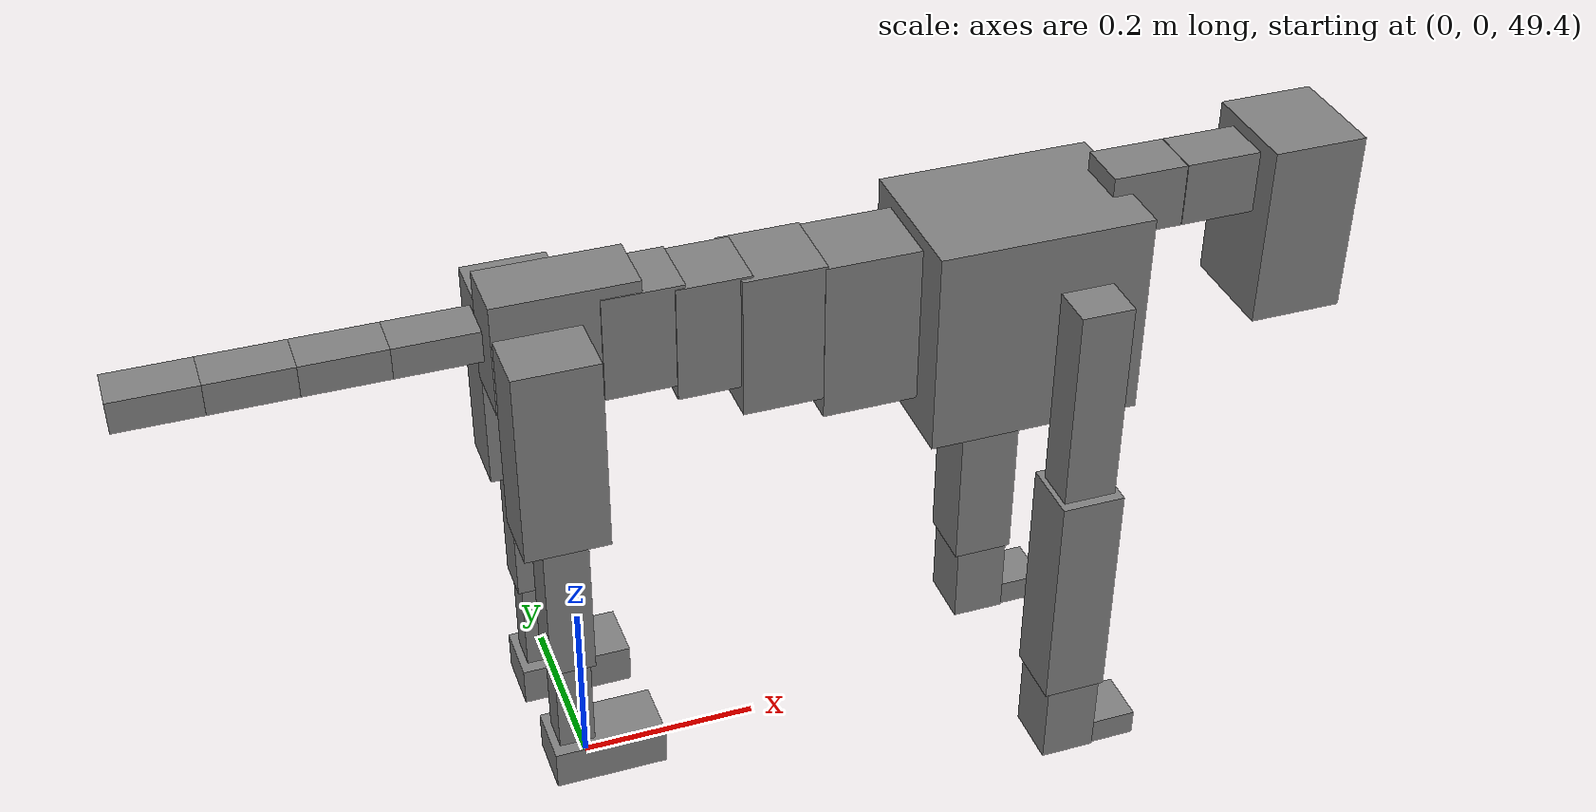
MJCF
<mujoco model="dog">

    <default>
        <joint armature="0.02" stiffness="1" damping="0.2" limited="true"/>
        <geom condim="3" friction="1 0.05 0.05" margin="0.01"/>
        <motor ctrllimited="true" ctrlrange="-1.0 1.0" forcelimited="true" gear="50"/>
    </default>

    <compiler inertiafromgeom="true" angle="radian"/>

    <option timestep="0.016" iterations="50" tolerance="1e-10" solver="Newton" jacobian="dense" cone="pyramidal"/>

    <size nconmax="20000" njmax="60000" nstack="5000000"/>
    <visual>
        <map force="0.1" zfar="30"/>
        <rgba haze="0.15 0.25 0.35 1"/>
        <quality shadowsize="2048"/>
        <global offwidth="800" offheight="800"/>
    </visual>

    <asset>
        <texture type="skybox" builtin="gradient" rgb1="0.3 0.5 0.7" rgb2="0 0 0" width="512" height="512"/>
        <texture name="texplane" type="2d" builtin="checker" rgb1=".2 .3 .4" rgb2=".1 0.15 0.2" width="512" height="512"
                 mark="cross" markrgb=".8 .8 .8"/>
        <texture name="texgeom" type="cube" builtin="flat" mark="cross" width="127" height="1278" rgb1="0.8 0.6 0.4"
                 rgb2="0.8 0.6 0.4" markrgb="1 1 1" random="0.01"/>

        <material name="matplane" reflectance="0.3" texture="texplane" texrepeat="1 1" texuniform="true"/>
        <material name="matgeom" texture="texgeom" texuniform="true" rgba="0.8 0.6 .4 1"/>
    </asset>

    <worldbody>
        <geom name="floor" pos="0 0 0" size="0 0 .25" type="plane" material="matplane" condim="3"/>

        <light directional="false" diffuse=".2 .2 .2" specular="0 0 0" pos="0 0 5" dir="0 0 -1" castshadow="false"/>
        <light mode="targetbodycom" target="torso" directional="false" diffuse=".8 .8 .8" specular="0.3 0.3 0.3"
               pos="0 0 4.0" dir="0 0 -1"/>

        <body name="root" pos="0 0 50">
            <freejoint name="root_1"/>
            <geom type="box" pos="0 0 -0.02" size="0.0774  0.0358  0.063" density="2030"/>

            <body name="spine1" pos="0.054 0 0">
                <joint name="spine1_y" axis="0 1 0" range="0 0.7" limited="true"/>
                <geom type="box" pos="0.02375 0 -0.03" size="0.04375  0.0375  0.05985" density="2030"/>

                <body name="spine2" pos="0.0612 0 0">
                    <joint name="spine2_y" axis="0 1 0" range="-0.15 0.15" limited="true"/>
                    <geom type="box" pos="0.03555  0  -0.04" size="0.04055  0.039  0.06615" density="2030"/>

                    <body name="spine3" pos="0.0730 0 0">
                        <joint name="spine3_y" axis="0 1 0" range="-0.15 0.15" limited="true"/>
                        <geom type="box" pos="0.03555  0  -0.057" size="0.04555  0.0445  0.081" density="2030"/>

                        <body name="spine4" pos="0.0780 0 0">
                            <joint name="spine4_y" axis="0 1 0" range="-0.15 0.15" limited="true"/>
                            <geom type="box" pos="0.05265  0  -0.07" size="0.05265  0.045  0.09135" density="2030"/>

                            <body name="torso" pos="0.1082 0 0">
                                <joint name="torso_y" axis="0 1 0" range="-0.15 0.15" limited="true"/>
                                <geom type="box" pos="0.11925  0  -0.085" size="0.11925  0.085  0.11745"
                                      density="2030"/>

                                <body name="neck1" pos="0.2160  0   0.0180">
                                    <joint name="neck1_y" axis="0 1 0" range="-1.2  -1" limited="true"/>
                                    <geom type="box" pos="0.0423  0  0" size="0.0423  0.03  0.036" density="2325"/>

                                    <body name="neck2" pos="0.0853  0  0">
                                        <joint name="neck2_y" axis="0 1 0" range="0.1  0" limited="true"/>
                                        <geom type="box" pos="0.0423  0  0" size="0.0423  0.03  0.036" density="2325"/>

                                        <body name="head" pos="0.0853  0  0">
                                            <joint name="head_y" axis="0 1 0" range="-0.3  -0.2" limited="true"/>
                                            <geom type="box" pos="0.0531  0  -0.055" size="0.0531  0.06  0.1044"
                                                  density="4030"/>

                                        </body>
                                    </body>
                                </body>

                                <body name="front_shoulder" pos="0.156  0   -0.0480">
                                    <joint name="front_shoulder_y" axis="0 1 0" range="-1 1.5" limited="true"/>
                                    <geom type="box" pos="0 0.13 -0.1047" size="0.0295  0.0252  0.1314" density="1158"/>
                                    <geom type="box" pos="0 -0.13 -0.1047" size="0.0295  0.0252  0.1314"
                                          density="1158"/>

                                    <body name="front_elbow" pos="0  0  -0.2094">
                                        <joint name="front_elbow_y" axis="0 1 0" range="-2 0" limited="true"/>
                                        <geom type="box" pos="0 0.13 -0.1338" size="0.0354  0.0362  0.1338"
                                              density="1081"/>
                                        <geom type="box" pos="0 -0.13 -0.1338" size="0.0354  0.0362  0.1338"
                                              density="1081"/>

                                        <body name="front_wrist" pos="0  0  -0.2676">
                                            <joint name="front_wrist_y" axis="0 1 0" range="-0.2 0" limited="true"/>
                                            <geom type="box" pos="0 0.13 -0.0415" size="0.0310  0.0344  0.0546"
                                                  density="1664"/>
                                            <geom type="box" pos="0 -0.13 -0.0415" size="0.0310  0.0344  0.0546"
                                                  density="1664"/>

                                            <body name="front_finger_end" pos="0  0  -0.0830">
                                                <joint name="front_finger_y" axis="0 1 0" range="-0.4 1"
                                                       limited="true"/>
                                                <geom type="box" pos="0.0299  0.13  -0.0002"
                                                      size="0.0548  0.0299  0.0152" density="1515"/>
                                                <geom type="box" pos="0.0299  -0.13  -0.0002"
                                                      size="0.0548  0.0299  0.0152" density="1515"/>

                                            </body>

                                        </body>
                                    </body>
                                </body>

                            </body>
                        </body>
                    </body>
                </body>
            </body>

            <body name="back_hip" pos="-0.03 0 -0.018">
                <joint name="back_hip_y" axis="0 1 0" range="-1.5 0.3" limited="true"/>
                <geom type="box" pos="0 0.07 -0.0890" size="0.0458  0.0359  0.1118" density="1154"/>
                <geom type="box" pos="0 -0.07 -0.0890" size="0.0458  0.0359  0.1118" density="1154"/>

                <body name="back_knee" pos="0  0  -0.1781">
                    <joint name="back_knee_y" axis="0 1 0" range="0 2.8" limited="true"/>
                    <geom type="box" pos="0 0.07 -0.0886" size="0.0244  0.0241  0.1042" density="1227"/>
                    <geom type="box" pos="0 -0.07 -0.0886" size="0.0244  0.0241  0.1042" density="1227"/>

                    <body name="back_ankle" pos="0  0  -0.1772">
                        <joint name="back_ankle_y" axis="0 1 0" range="-2.2 0" limited="true"/>
                        <geom type="box" pos="0 0.07 -0.0693" size="0.0197  0.0197  0.0806" density="1284"/>
                        <geom type="box" pos="0 -0.07 -0.0693" size="0.0197  0.0197  0.0806" density="1284"/>

                        <body name="back_toe_end" pos="0  0  -0.1386">
                            <joint name="back_toe_y" axis="0 1 0" range="-0.4 1" limited="true"/>
                            <geom type="box" pos="0.0339  0.07  -0.0075" size="0.0621  0.0339  0.0225" density="1515"/>
                            <geom type="box" pos="0.0339  -0.07  -0.0075" size="0.0621  0.0339  0.0225" density="1515"/>

                        </body>
                    </body>
                </body>
            </body>

            <body name="tail1" pos="-0.074 0 -0.006">
                <joint name="tail1_y" axis="0 1 0" range="-0.2 0.2" limited="true"/>
                <geom type="box" pos="-0.0536  0  0" size="0.045  0.025  0.0175" density="1587"/>

                <body name="tail2" pos="-0.09 0 0">
                    <joint name="tail2_y" axis="0 1 0" range="-0.2 0.2" limited="true"/>
                    <geom type="box" pos="-0.0536  0  0" size="0.045  0.025  0.0175" density="1587"/>

                    <body name="tail3" pos="-0.09 0 0">
                        <joint name="tail3_y" axis="0 1 0" range="-0.2 0.2" limited="true"/>
                        <geom type="box" pos="-0.0536  0  0" size="0.045  0.025  0.0175" density="1587"/>

                        <body name="tail4" pos="-0.09 0 0">
                            <joint name="tail4_y" axis="0 1 0" range="-0.2 0.2" limited="true"/>
                            <geom type="box" pos="-0.0536  0  0" size="0.045  0.025  0.0175" density="1587"/>

                        </body>
                    </body>
                </body>
            </body>
        </body>
    </worldbody>

    <actuator>
        <motor joint="spine1_y" forcerange="-150 150     "/>
        <motor joint="spine2_y" forcerange="-150 150     "/>
        <motor joint="spine3_y" forcerange="-150 150     "/>
        <motor joint="spine4_y" forcerange="-150 150     "/>
        <motor joint="torso_y" forcerange="-150 150     "/>
        <motor joint="neck1_y" forcerange="-100 100       "/>
        <motor joint="neck2_y" forcerange="-100 100       "/>
        <motor joint="head_y" forcerange="-150 150       "/>
        <motor joint="front_shoulder_y" forcerange="-134.23 133.80"/>
        <motor joint="front_elbow_y" forcerange="-176.03 187.37"/>
        <motor joint="front_wrist_y" forcerange="-141.17 134.43"/>
        <motor joint="front_finger_y" forcerange="-93.24 26.32"/>
        <motor joint="back_hip_y" forcerange="-292.34 386.77"/>
        <motor joint="back_knee_y" forcerange="-320.84 229.64"/>
        <motor joint="back_angle_y" forcerange="-154.21 60.89"/>
        <motor joint="back_toe_y" forcerange="-58.09 132.88"/>
        <motor joint="tail1_y" forcerange="-50 50     "/>
        <motor joint="tail2_y" forcerange="-50 50     "/>
        <motor joint="tail3_y" forcerange="-50 50     "/>
        <motor joint="tail4_y" forcerange="-50 50     "/>
    </actuator>
</mujoco>
